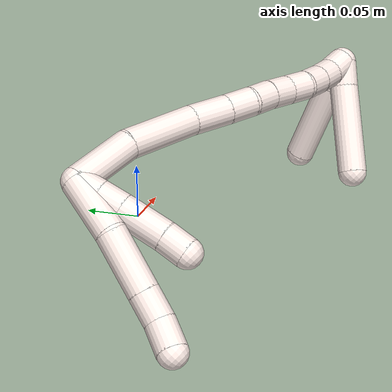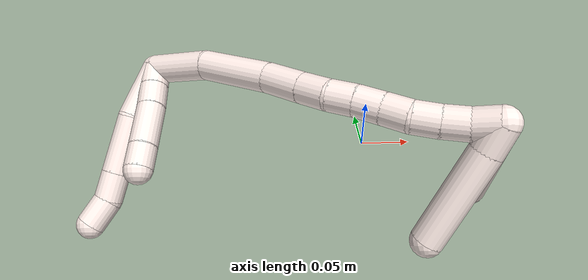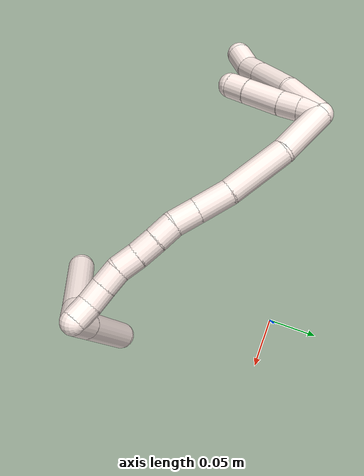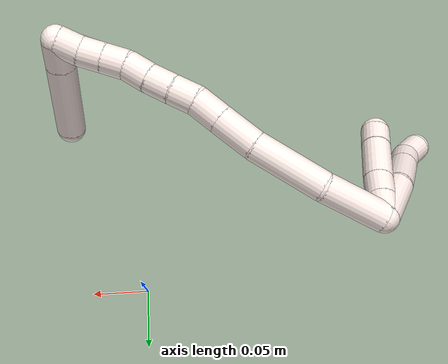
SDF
<sdf version="1.7">
 <world name="default">
  <model name="11">
   <static>0</static>
   <link name="11">
    <collision name="collision-cylinder-e_1_2_8">
     <pose>-0.003415 0.009228 0.022612 -0.387475 -0.138936 0.027301</pose>
     <geometry><cylinder><radius>0.0125</radius><length>0.04932</length></cylinder></geometry>
     <surface>
      <friction><ode><mu>1.16</mu><mu2>1.16</mu2><slip1>0</slip1><slip2>0</slip2></ode></friction>
      <contact><ode><kp>1e+06</kp><kd>1</kd><max_vel>0</max_vel><min_depth>0.001</min_depth></ode></contact>
     </surface>
    </collision>
    <visual name="visual-cylinder-e_1_2_8">
     <pose>-0.003415 0.009228 0.022612 -0.387475 -0.138936 0.027301</pose>
     <geometry><cylinder><radius>0.0125</radius><length>0.04932</length></cylinder></geometry>
     <material><ambient>1 0.933333 0.909804 1</ambient></material>
    </visual>
    <collision name="collision-cylinder-e_2_8_9">
     <pose>-0.013213 0.023264 0.069242 -0.197571 -0.254894 0.025398</pose>
     <geometry><cylinder><radius>0.0125</radius><length>0.050626</length></cylinder></geometry>
     <surface>
      <friction><ode><mu>1.16</mu><mu2>1.16</mu2><slip1>0</slip1><slip2>0</slip2></ode></friction>
      <contact><ode><kp>1e+06</kp><kd>1</kd><max_vel>0</max_vel><min_depth>0.001</min_depth></ode></contact>
     </surface>
    </collision>
    <visual name="visual-cylinder-e_2_8_9">
     <pose>-0.013213 0.023264 0.069242 -0.197571 -0.254894 0.025398</pose>
     <geometry><cylinder><radius>0.0125</radius><length>0.050626</length></cylinder></geometry>
     <material><ambient>1 0.933333 0.909804 1</ambient></material>
    </visual>
    <collision name="collision-cylinder-e_3_9_10">
     <pose>-0.022728 0.030398 0.104902 -0.197208 -0.257998 0.025663</pose>
     <geometry><cylinder><radius>0.0125</radius><length>0.024556</length></cylinder></geometry>
     <surface>
      <friction><ode><mu>1.16</mu><mu2>1.16</mu2><slip1>0</slip1><slip2>0</slip2></ode></friction>
      <contact><ode><kp>1e+06</kp><kd>1</kd><max_vel>0</max_vel><min_depth>0.001</min_depth></ode></contact>
     </surface>
    </collision>
    <visual name="visual-cylinder-e_3_9_10">
     <pose>-0.022728 0.030398 0.104902 -0.197208 -0.257998 0.025663</pose>
     <geometry><cylinder><radius>0.0125</radius><length>0.024556</length></cylinder></geometry>
     <material><ambient>1 0.933333 0.909804 1</ambient></material>
    </visual>
    <collision name="collision-cylinder-e_4_10_6">
     <pose>-0.029523 0.038985 0.127029 -0.538255 -0.291382 0.080898</pose>
     <geometry><cylinder><radius>0.0125</radius><length>0.025499</length></cylinder></geometry>
     <surface>
      <friction><ode><mu>1.16</mu><mu2>1.16</mu2><slip1>0</slip1><slip2>0</slip2></ode></friction>
      <contact><ode><kp>1e+06</kp><kd>1</kd><max_vel>0</max_vel><min_depth>0.001</min_depth></ode></contact>
     </surface>
    </collision>
    <visual name="visual-cylinder-e_4_10_6">
     <pose>-0.029523 0.038985 0.127029 -0.538255 -0.291382 0.080898</pose>
     <geometry><cylinder><radius>0.0125</radius><length>0.025499</length></cylinder></geometry>
     <material><ambient>1 0.933333 0.909804 1</ambient></material>
    </visual>
    <collision name="collision-cylinder-e_1_2_11">
     <pose>0.00262 0.001542 0.009626 -0.158813 0.262525 -0.02101</pose>
     <geometry><cylinder><radius>0.0125</radius><length>0.020188</length></cylinder></geometry>
     <surface>
      <friction><ode><mu>1.16</mu><mu2>1.16</mu2><slip1>0</slip1><slip2>0</slip2></ode></friction>
      <contact><ode><kp>1e+06</kp><kd>1</kd><max_vel>0</max_vel><min_depth>0.001</min_depth></ode></contact>
     </surface>
    </collision>
    <visual name="visual-cylinder-e_1_2_11">
     <pose>0.00262 0.001542 0.009626 -0.158813 0.262525 -0.02101</pose>
     <geometry><cylinder><radius>0.0125</radius><length>0.020188</length></cylinder></geometry>
     <material><ambient>1 0.933333 0.909804 1</ambient></material>
    </visual>
    <collision name="collision-cylinder-e_2_11_12">
     <pose>0.007857 0.004663 0.029212 -0.15731 0.253985 -0.020126</pose>
     <geometry><cylinder><radius>0.0125</radius><length>0.020839</length></cylinder></geometry>
     <surface>
      <friction><ode><mu>1.16</mu><mu2>1.16</mu2><slip1>0</slip1><slip2>0</slip2></ode></friction>
      <contact><ode><kp>1e+06</kp><kd>1</kd><max_vel>0</max_vel><min_depth>0.001</min_depth></ode></contact>
     </surface>
    </collision>
    <visual name="visual-cylinder-e_2_11_12">
     <pose>0.007857 0.004663 0.029212 -0.15731 0.253985 -0.020126</pose>
     <geometry><cylinder><radius>0.0125</radius><length>0.020839</length></cylinder></geometry>
     <material><ambient>1 0.933333 0.909804 1</ambient></material>
    </visual>
    <collision name="collision-cylinder-e_3_12_13">
     <pose>0.014838 0.01028 0.057502 -0.216748 0.228364 -0.024953</pose>
     <geometry><cylinder><radius>0.0125</radius><length>0.038538</length></cylinder></geometry>
     <surface>
      <friction><ode><mu>1.16</mu><mu2>1.16</mu2><slip1>0</slip1><slip2>0</slip2></ode></friction>
      <contact><ode><kp>1e+06</kp><kd>1</kd><max_vel>0</max_vel><min_depth>0.001</min_depth></ode></contact>
     </surface>
    </collision>
    <visual name="visual-cylinder-e_3_12_13">
     <pose>0.014838 0.01028 0.057502 -0.216748 0.228364 -0.024953</pose>
     <geometry><cylinder><radius>0.0125</radius><length>0.038538</length></cylinder></geometry>
     <material><ambient>1 0.933333 0.909804 1</ambient></material>
    </visual>
    <collision name="collision-cylinder-e_4_13_5">
     <pose>0.020831 0.016349 0.085711 -0.202974 0.16032 -0.016361</pose>
     <geometry><cylinder><radius>0.0125</radius><length>0.020434</length></cylinder></geometry>
     <surface>
      <friction><ode><mu>1.16</mu><mu2>1.16</mu2><slip1>0</slip1><slip2>0</slip2></ode></friction>
      <contact><ode><kp>1e+06</kp><kd>1</kd><max_vel>0</max_vel><min_depth>0.001</min_depth></ode></contact>
     </surface>
    </collision>
    <visual name="visual-cylinder-e_4_13_5">
     <pose>0.020831 0.016349 0.085711 -0.202974 0.16032 -0.016361</pose>
     <geometry><cylinder><radius>0.0125</radius><length>0.020434</length></cylinder></geometry>
     <material><ambient>1 0.933333 0.909804 1</ambient></material>
    </visual>
    <collision name="collision-cylinder-e_1_2_14">
     <pose>0.02224 -0.015914 0.002754 1.39941 0.9427 0.810557</pose>
     <geometry><cylinder><radius>0.0125</radius><length>0.054972</length></cylinder></geometry>
     <surface>
      <friction><ode><mu>1.16</mu><mu2>1.16</mu2><slip1>0</slip1><slip2>0</slip2></ode></friction>
      <contact><ode><kp>1e+06</kp><kd>1</kd><max_vel>0</max_vel><min_depth>0.001</min_depth></ode></contact>
     </surface>
    </collision>
    <visual name="visual-cylinder-e_1_2_14">
     <pose>0.02224 -0.015914 0.002754 1.39941 0.9427 0.810557</pose>
     <geometry><cylinder><radius>0.0125</radius><length>0.054972</length></cylinder></geometry>
     <material><ambient>1 0.933333 0.909804 1</ambient></material>
    </visual>
    <collision name="collision-cylinder-e_2_14_15">
     <pose>0.068344 -0.049828 0.015707 1.05532 0.856578 0.520088</pose>
     <geometry><cylinder><radius>0.0125</radius><length>0.063165</length></cylinder></geometry>
     <surface>
      <friction><ode><mu>1.16</mu><mu2>1.16</mu2><slip1>0</slip1><slip2>0</slip2></ode></friction>
      <contact><ode><kp>1e+06</kp><kd>1</kd><max_vel>0</max_vel><min_depth>0.001</min_depth></ode></contact>
     </surface>
    </collision>
    <visual name="visual-cylinder-e_2_14_15">
     <pose>0.068344 -0.049828 0.015707 1.05532 0.856578 0.520088</pose>
     <geometry><cylinder><radius>0.0125</radius><length>0.063165</length></cylinder></geometry>
     <material><ambient>1 0.933333 0.909804 1</ambient></material>
    </visual>
    <collision name="collision-cylinder-e_3_15_16">
     <pose>0.105511 -0.07601 0.032814 0.869565 0.892992 0.437558</pose>
     <geometry><cylinder><radius>0.0125</radius><length>0.034156</length></cylinder></geometry>
     <surface>
      <friction><ode><mu>1.16</mu><mu2>1.16</mu2><slip1>0</slip1><slip2>0</slip2></ode></friction>
      <contact><ode><kp>1e+06</kp><kd>1</kd><max_vel>0</max_vel><min_depth>0.001</min_depth></ode></contact>
     </surface>
    </collision>
    <visual name="visual-cylinder-e_3_15_16">
     <pose>0.105511 -0.07601 0.032814 0.869565 0.892992 0.437558</pose>
     <geometry><cylinder><radius>0.0125</radius><length>0.034156</length></cylinder></geometry>
     <material><ambient>1 0.933333 0.909804 1</ambient></material>
    </visual>
    <collision name="collision-cylinder-e_4_16_17">
     <pose>0.128465 -0.089824 0.044442 0.873299 0.920068 0.454497</pose>
     <geometry><cylinder><radius>0.0125</radius><length>0.024258</length></cylinder></geometry>
     <surface>
      <friction><ode><mu>1.16</mu><mu2>1.16</mu2><slip1>0</slip1><slip2>0</slip2></ode></friction>
      <contact><ode><kp>1e+06</kp><kd>1</kd><max_vel>0</max_vel><min_depth>0.001</min_depth></ode></contact>
     </surface>
    </collision>
    <visual name="visual-cylinder-e_4_16_17">
     <pose>0.128465 -0.089824 0.044442 0.873299 0.920068 0.454497</pose>
     <geometry><cylinder><radius>0.0125</radius><length>0.024258</length></cylinder></geometry>
     <material><ambient>1 0.933333 0.909804 1</ambient></material>
    </visual>
    <collision name="collision-cylinder-e_5_17_18">
     <pose>0.14542 -0.102287 0.052344 1.1349 0.769823 0.505389</pose>
     <geometry><cylinder><radius>0.0125</radius><length>0.020992</length></cylinder></geometry>
     <surface>
      <friction><ode><mu>1.16</mu><mu2>1.16</mu2><slip1>0</slip1><slip2>0</slip2></ode></friction>
      <contact><ode><kp>1e+06</kp><kd>1</kd><max_vel>0</max_vel><min_depth>0.001</min_depth></ode></contact>
     </surface>
    </collision>
    <visual name="visual-cylinder-e_5_17_18">
     <pose>0.14542 -0.102287 0.052344 1.1349 0.769823 0.505389</pose>
     <geometry><cylinder><radius>0.0125</radius><length>0.020992</length></cylinder></geometry>
     <material><ambient>1 0.933333 0.909804 1</ambient></material>
    </visual>
    <collision name="collision-cylinder-e_6_18_19">
     <pose>0.15983 -0.116063 0.059476 1.05357 0.726848 0.435379</pose>
     <geometry><cylinder><radius>0.0125</radius><length>0.021383</length></cylinder></geometry>
     <surface>
      <friction><ode><mu>1.16</mu><mu2>1.16</mu2><slip1>0</slip1><slip2>0</slip2></ode></friction>
      <contact><ode><kp>1e+06</kp><kd>1</kd><max_vel>0</max_vel><min_depth>0.001</min_depth></ode></contact>
     </surface>
    </collision>
    <visual name="visual-cylinder-e_6_18_19">
     <pose>0.15983 -0.116063 0.059476 1.05357 0.726848 0.435379</pose>
     <geometry><cylinder><radius>0.0125</radius><length>0.021383</length></cylinder></geometry>
     <material><ambient>1 0.933333 0.909804 1</ambient></material>
    </visual>
    <collision name="collision-cylinder-e_7_19_20">
     <pose>0.174421 -0.12906 0.067505 0.977888 0.798076 0.441366</pose>
     <geometry><cylinder><radius>0.0125</radius><length>0.020911</length></cylinder></geometry>
     <surface>
      <friction><ode><mu>1.16</mu><mu2>1.16</mu2><slip1>0</slip1><slip2>0</slip2></ode></friction>
      <contact><ode><kp>1e+06</kp><kd>1</kd><max_vel>0</max_vel><min_depth>0.001</min_depth></ode></contact>
     </surface>
    </collision>
    <visual name="visual-cylinder-e_7_19_20">
     <pose>0.174421 -0.12906 0.067505 0.977888 0.798076 0.441366</pose>
     <geometry><cylinder><radius>0.0125</radius><length>0.020911</length></cylinder></geometry>
     <material><ambient>1 0.933333 0.909804 1</ambient></material>
    </visual>
    <collision name="collision-cylinder-e_8_20_21">
     <pose>0.188173 -0.142648 0.073931 1.26881 0.67101 0.502347</pose>
     <geometry><cylinder><radius>0.0125</radius><length>0.020153</length></cylinder></geometry>
     <surface>
      <friction><ode><mu>1.16</mu><mu2>1.16</mu2><slip1>0</slip1><slip2>0</slip2></ode></friction>
      <contact><ode><kp>1e+06</kp><kd>1</kd><max_vel>0</max_vel><min_depth>0.001</min_depth></ode></contact>
     </surface>
    </collision>
    <visual name="visual-cylinder-e_8_20_21">
     <pose>0.188173 -0.142648 0.073931 1.26881 0.67101 0.502347</pose>
     <geometry><cylinder><radius>0.0125</radius><length>0.020153</length></cylinder></geometry>
     <material><ambient>1 0.933333 0.909804 1</ambient></material>
    </visual>
    <collision name="collision-cylinder-e_9_21_22">
     <pose>0.200948 -0.157585 0.077966 1.34655 0.708805 0.573969</pose>
     <geometry><cylinder><radius>0.0125</radius><length>0.020002</length></cylinder></geometry>
     <surface>
      <friction><ode><mu>1.16</mu><mu2>1.16</mu2><slip1>0</slip1><slip2>0</slip2></ode></friction>
      <contact><ode><kp>1e+06</kp><kd>1</kd><max_vel>0</max_vel><min_depth>0.001</min_depth></ode></contact>
     </surface>
    </collision>
    <visual name="visual-cylinder-e_9_21_22">
     <pose>0.200948 -0.157585 0.077966 1.34655 0.708805 0.573969</pose>
     <geometry><cylinder><radius>0.0125</radius><length>0.020002</length></cylinder></geometry>
     <material><ambient>1 0.933333 0.909804 1</ambient></material>
    </visual>
    <collision name="collision-cylinder-e_10_22_1">
     <pose>0.215383 -0.171058 0.080297 1.46528 0.914344 0.833339</pose>
     <geometry><cylinder><radius>0.0125</radius><length>0.020008</length></cylinder></geometry>
     <surface>
      <friction><ode><mu>1.16</mu><mu2>1.16</mu2><slip1>0</slip1><slip2>0</slip2></ode></friction>
      <contact><ode><kp>1e+06</kp><kd>1</kd><max_vel>0</max_vel><min_depth>0.001</min_depth></ode></contact>
     </surface>
    </collision>
    <visual name="visual-cylinder-e_10_22_1">
     <pose>0.215383 -0.171058 0.080297 1.46528 0.914344 0.833339</pose>
     <geometry><cylinder><radius>0.0125</radius><length>0.020008</length></cylinder></geometry>
     <material><ambient>1 0.933333 0.909804 1</ambient></material>
    </visual>
    <collision name="collision-cylinder-e_1_1_23">
     <pose>0.212714 -0.183138 0.085247 0.948848 -0.961553 -0.523439</pose>
     <geometry><cylinder><radius>0.0125</radius><length>0.025836</length></cylinder></geometry>
     <surface>
      <friction><ode><mu>1.16</mu><mu2>1.16</mu2><slip1>0</slip1><slip2>0</slip2></ode></friction>
      <contact><ode><kp>1e+06</kp><kd>1</kd><max_vel>0</max_vel><min_depth>0.001</min_depth></ode></contact>
     </surface>
    </collision>
    <visual name="visual-cylinder-e_1_1_23">
     <pose>0.212714 -0.183138 0.085247 0.948848 -0.961553 -0.523439</pose>
     <geometry><cylinder><radius>0.0125</radius><length>0.025836</length></cylinder></geometry>
     <material><ambient>1 0.933333 0.909804 1</ambient></material>
    </visual>
    <collision name="collision-cylinder-e_2_23_4">
     <pose>0.171922 -0.206651 0.102074 0.949934 -0.951628 -0.518062</pose>
     <geometry><cylinder><radius>0.0125</radius><length>0.074164</length></cylinder></geometry>
     <surface>
      <friction><ode><mu>1.16</mu><mu2>1.16</mu2><slip1>0</slip1><slip2>0</slip2></ode></friction>
      <contact><ode><kp>1e+06</kp><kd>1</kd><max_vel>0</max_vel><min_depth>0.001</min_depth></ode></contact>
     </surface>
    </collision>
    <visual name="visual-cylinder-e_2_23_4">
     <pose>0.171922 -0.206651 0.102074 0.949934 -0.951628 -0.518062</pose>
     <geometry><cylinder><radius>0.0125</radius><length>0.074164</length></cylinder></geometry>
     <material><ambient>1 0.933333 0.909804 1</ambient></material>
    </visual>
    <collision name="collision-cylinder-e_1_1_24">
     <pose>0.215908 -0.176049 0.08953 -0.125167 -0.707258 0.046257</pose>
     <geometry><cylinder><radius>0.0125</radius><length>0.022778</length></cylinder></geometry>
     <surface>
      <friction><ode><mu>1.16</mu><mu2>1.16</mu2><slip1>0</slip1><slip2>0</slip2></ode></friction>
      <contact><ode><kp>1e+06</kp><kd>1</kd><max_vel>0</max_vel><min_depth>0.001</min_depth></ode></contact>
     </surface>
    </collision>
    <visual name="visual-cylinder-e_1_1_24">
     <pose>0.215908 -0.176049 0.08953 -0.125167 -0.707258 0.046257</pose>
     <geometry><cylinder><radius>0.0125</radius><length>0.022778</length></cylinder></geometry>
     <material><ambient>1 0.933333 0.909804 1</ambient></material>
    </visual>
    <collision name="collision-cylinder-e_2_24_3">
     <pose>0.184111 -0.167826 0.127181 -0.240999 -0.683944 0.08615</pose>
     <geometry><cylinder><radius>0.0125</radius><length>0.077222</length></cylinder></geometry>
     <surface>
      <friction><ode><mu>1.16</mu><mu2>1.16</mu2><slip1>0</slip1><slip2>0</slip2></ode></friction>
      <contact><ode><kp>1e+06</kp><kd>1</kd><max_vel>0</max_vel><min_depth>0.001</min_depth></ode></contact>
     </surface>
    </collision>
    <visual name="visual-cylinder-e_2_24_3">
     <pose>0.184111 -0.167826 0.127181 -0.240999 -0.683944 0.08615</pose>
     <geometry><cylinder><radius>0.0125</radius><length>0.077222</length></cylinder></geometry>
     <material><ambient>1 0.933333 0.909804 1</ambient></material>
    </visual>
    <collision name="collision-sphere-3">
     <pose>0.159714 -0.160683 0.156244 0 -0 0</pose>
     <geometry><sphere><radius>0.0125</radius></sphere></geometry>
     <surface>
      <friction><ode><mu>1.16</mu><mu2>1.16</mu2><slip1>0</slip1><slip2>0</slip2></ode></friction>
      <contact><ode><kp>1e+06</kp><kd>1</kd><max_vel>0</max_vel><min_depth>0.001</min_depth></ode></contact>
     </surface>
    </collision>
    <visual name="visual-sphere-3">
     <pose>0.159714 -0.160683 0.156244 0 -0 0</pose>
     <geometry><sphere><radius>0.0125</radius></sphere></geometry>
     <material><ambient>1 0.933333 0.909804 1</ambient></material>
    </visual>
    <collision name="collision-sphere-24">
     <pose>0.208508 -0.174968 0.098119 0 -0 0</pose>
     <geometry><sphere><radius>0.0125</radius></sphere></geometry>
     <surface>
      <friction><ode><mu>1.16</mu><mu2>1.16</mu2><slip1>0</slip1><slip2>0</slip2></ode></friction>
      <contact><ode><kp>1e+06</kp><kd>1</kd><max_vel>0</max_vel><min_depth>0.001</min_depth></ode></contact>
     </surface>
    </collision>
    <visual name="visual-sphere-24">
     <pose>0.208508 -0.174968 0.098119 0 -0 0</pose>
     <geometry><sphere><radius>0.0125</radius></sphere></geometry>
     <material><ambient>1 0.933333 0.909804 1</ambient></material>
    </visual>
    <collision name="collision-sphere-4">
     <pose>0.141724 -0.224155 0.114593 0 -0 0</pose>
     <geometry><sphere><radius>0.0125</radius></sphere></geometry>
     <surface>
      <friction><ode><mu>1.16</mu><mu2>1.16</mu2><slip1>0</slip1><slip2>0</slip2></ode></friction>
      <contact><ode><kp>1e+06</kp><kd>1</kd><max_vel>0</max_vel><min_depth>0.001</min_depth></ode></contact>
     </surface>
    </collision>
    <visual name="visual-sphere-4">
     <pose>0.141724 -0.224155 0.114593 0 -0 0</pose>
     <geometry><sphere><radius>0.0125</radius></sphere></geometry>
     <material><ambient>1 0.933333 0.909804 1</ambient></material>
    </visual>
    <collision name="collision-sphere-23">
     <pose>0.20212 -0.189146 0.089554 0 -0 0</pose>
     <geometry><sphere><radius>0.0125</radius></sphere></geometry>
     <surface>
      <friction><ode><mu>1.16</mu><mu2>1.16</mu2><slip1>0</slip1><slip2>0</slip2></ode></friction>
      <contact><ode><kp>1e+06</kp><kd>1</kd><max_vel>0</max_vel><min_depth>0.001</min_depth></ode></contact>
     </surface>
    </collision>
    <visual name="visual-sphere-23">
     <pose>0.20212 -0.189146 0.089554 0 -0 0</pose>
     <geometry><sphere><radius>0.0125</radius></sphere></geometry>
     <material><ambient>1 0.933333 0.909804 1</ambient></material>
    </visual>
    <collision name="collision-sphere-1">
     <pose>0.223308 -0.17713 0.08094 0 -0 0</pose>
     <geometry><sphere><radius>0.0125</radius></sphere></geometry>
     <surface>
      <friction><ode><mu>1.16</mu><mu2>1.16</mu2><slip1>0</slip1><slip2>0</slip2></ode></friction>
      <contact><ode><kp>1e+06</kp><kd>1</kd><max_vel>0</max_vel><min_depth>0.001</min_depth></ode></contact>
     </surface>
    </collision>
    <visual name="visual-sphere-1">
     <pose>0.223308 -0.17713 0.08094 0 -0 0</pose>
     <geometry><sphere><radius>0.0125</radius></sphere></geometry>
     <material><ambient>1 0.933333 0.909804 1</ambient></material>
    </visual>
    <collision name="collision-sphere-22">
     <pose>0.207458 -0.164987 0.079654 0 -0 0</pose>
     <geometry><sphere><radius>0.0125</radius></sphere></geometry>
     <surface>
      <friction><ode><mu>1.16</mu><mu2>1.16</mu2><slip1>0</slip1><slip2>0</slip2></ode></friction>
      <contact><ode><kp>1e+06</kp><kd>1</kd><max_vel>0</max_vel><min_depth>0.001</min_depth></ode></contact>
     </surface>
    </collision>
    <visual name="visual-sphere-22">
     <pose>0.207458 -0.164987 0.079654 0 -0 0</pose>
     <geometry><sphere><radius>0.0125</radius></sphere></geometry>
     <material><ambient>1 0.933333 0.909804 1</ambient></material>
    </visual>
    <collision name="collision-sphere-21">
     <pose>0.194438 -0.150183 0.076278 0 -0 0</pose>
     <geometry><sphere><radius>0.0125</radius></sphere></geometry>
     <surface>
      <friction><ode><mu>1.16</mu><mu2>1.16</mu2><slip1>0</slip1><slip2>0</slip2></ode></friction>
      <contact><ode><kp>1e+06</kp><kd>1</kd><max_vel>0</max_vel><min_depth>0.001</min_depth></ode></contact>
     </surface>
    </collision>
    <visual name="visual-sphere-21">
     <pose>0.194438 -0.150183 0.076278 0 -0 0</pose>
     <geometry><sphere><radius>0.0125</radius></sphere></geometry>
     <material><ambient>1 0.933333 0.909804 1</ambient></material>
    </visual>
    <collision name="collision-sphere-11">
     <pose>0.005239 0.003083 0.019251 0 -0 0</pose>
     <geometry><sphere><radius>0.0125</radius></sphere></geometry>
     <surface>
      <friction><ode><mu>1.16</mu><mu2>1.16</mu2><slip1>0</slip1><slip2>0</slip2></ode></friction>
      <contact><ode><kp>1e+06</kp><kd>1</kd><max_vel>0</max_vel><min_depth>0.001</min_depth></ode></contact>
     </surface>
    </collision>
    <visual name="visual-sphere-11">
     <pose>0.005239 0.003083 0.019251 0 -0 0</pose>
     <geometry><sphere><radius>0.0125</radius></sphere></geometry>
     <material><ambient>1 0.933333 0.909804 1</ambient></material>
    </visual>
    <collision name="collision-sphere-6">
     <pose>-0.033186 0.045245 0.137514 0 -0 0</pose>
     <geometry><sphere><radius>0.0125</radius></sphere></geometry>
     <surface>
      <friction><ode><mu>1.16</mu><mu2>1.16</mu2><slip1>0</slip1><slip2>0</slip2></ode></friction>
      <contact><ode><kp>1e+06</kp><kd>1</kd><max_vel>0</max_vel><min_depth>0.001</min_depth></ode></contact>
     </surface>
    </collision>
    <visual name="visual-sphere-6">
     <pose>-0.033186 0.045245 0.137514 0 -0 0</pose>
     <geometry><sphere><radius>0.0125</radius></sphere></geometry>
     <material><ambient>1 0.933333 0.909804 1</ambient></material>
    </visual>
    <collision name="collision-sphere-10">
     <pose>-0.02586 0.032724 0.116543 0 -0 0</pose>
     <geometry><sphere><radius>0.0125</radius></sphere></geometry>
     <surface>
      <friction><ode><mu>1.16</mu><mu2>1.16</mu2><slip1>0</slip1><slip2>0</slip2></ode></friction>
      <contact><ode><kp>1e+06</kp><kd>1</kd><max_vel>0</max_vel><min_depth>0.001</min_depth></ode></contact>
     </surface>
    </collision>
    <visual name="visual-sphere-10">
     <pose>-0.02586 0.032724 0.116543 0 -0 0</pose>
     <geometry><sphere><radius>0.0125</radius></sphere></geometry>
     <material><ambient>1 0.933333 0.909804 1</ambient></material>
    </visual>
    <collision name="collision-sphere-9">
     <pose>-0.019595 0.028072 0.09326 0 -0 0</pose>
     <geometry><sphere><radius>0.0125</radius></sphere></geometry>
     <surface>
      <friction><ode><mu>1.16</mu><mu2>1.16</mu2><slip1>0</slip1><slip2>0</slip2></ode></friction>
      <contact><ode><kp>1e+06</kp><kd>1</kd><max_vel>0</max_vel><min_depth>0.001</min_depth></ode></contact>
     </surface>
    </collision>
    <visual name="visual-sphere-9">
     <pose>-0.019595 0.028072 0.09326 0 -0 0</pose>
     <geometry><sphere><radius>0.0125</radius></sphere></geometry>
     <material><ambient>1 0.933333 0.909804 1</ambient></material>
    </visual>
    <collision name="collision-sphere-2">
     <geometry><sphere><radius>0.0125</radius></sphere></geometry>
     <surface>
      <friction><ode><mu>1.16</mu><mu2>1.16</mu2><slip1>0</slip1><slip2>0</slip2></ode></friction>
      <contact><ode><kp>1e+06</kp><kd>1</kd><max_vel>0</max_vel><min_depth>0.001</min_depth></ode></contact>
     </surface>
    </collision>
    <visual name="visual-sphere-2">
     <geometry><sphere><radius>0.0125</radius></sphere></geometry>
     <material><ambient>1 0.933333 0.909804 1</ambient></material>
    </visual>
    <collision name="collision-sphere-19">
     <pose>0.166935 -0.123007 0.063427 0 -0 0</pose>
     <geometry><sphere><radius>0.0125</radius></sphere></geometry>
     <surface>
      <friction><ode><mu>1.16</mu><mu2>1.16</mu2><slip1>0</slip1><slip2>0</slip2></ode></friction>
      <contact><ode><kp>1e+06</kp><kd>1</kd><max_vel>0</max_vel><min_depth>0.001</min_depth></ode></contact>
     </surface>
    </collision>
    <visual name="visual-sphere-19">
     <pose>0.166935 -0.123007 0.063427 0 -0 0</pose>
     <geometry><sphere><radius>0.0125</radius></sphere></geometry>
     <material><ambient>1 0.933333 0.909804 1</ambient></material>
    </visual>
    <collision name="collision-sphere-8">
     <pose>-0.00683 0.018456 0.045224 0 -0 0</pose>
     <geometry><sphere><radius>0.0125</radius></sphere></geometry>
     <surface>
      <friction><ode><mu>1.16</mu><mu2>1.16</mu2><slip1>0</slip1><slip2>0</slip2></ode></friction>
      <contact><ode><kp>1e+06</kp><kd>1</kd><max_vel>0</max_vel><min_depth>0.001</min_depth></ode></contact>
     </surface>
    </collision>
    <visual name="visual-sphere-8">
     <pose>-0.00683 0.018456 0.045224 0 -0 0</pose>
     <geometry><sphere><radius>0.0125</radius></sphere></geometry>
     <material><ambient>1 0.933333 0.909804 1</ambient></material>
    </visual>
    <collision name="collision-sphere-12">
     <pose>0.010475 0.006243 0.039173 0 -0 0</pose>
     <geometry><sphere><radius>0.0125</radius></sphere></geometry>
     <surface>
      <friction><ode><mu>1.16</mu><mu2>1.16</mu2><slip1>0</slip1><slip2>0</slip2></ode></friction>
      <contact><ode><kp>1e+06</kp><kd>1</kd><max_vel>0</max_vel><min_depth>0.001</min_depth></ode></contact>
     </surface>
    </collision>
    <visual name="visual-sphere-12">
     <pose>0.010475 0.006243 0.039173 0 -0 0</pose>
     <geometry><sphere><radius>0.0125</radius></sphere></geometry>
     <material><ambient>1 0.933333 0.909804 1</ambient></material>
    </visual>
    <collision name="collision-sphere-13">
     <pose>0.0192 0.014316 0.075832 0 -0 0</pose>
     <geometry><sphere><radius>0.0125</radius></sphere></geometry>
     <surface>
      <friction><ode><mu>1.16</mu><mu2>1.16</mu2><slip1>0</slip1><slip2>0</slip2></ode></friction>
      <contact><ode><kp>1e+06</kp><kd>1</kd><max_vel>0</max_vel><min_depth>0.001</min_depth></ode></contact>
     </surface>
    </collision>
    <visual name="visual-sphere-13">
     <pose>0.0192 0.014316 0.075832 0 -0 0</pose>
     <geometry><sphere><radius>0.0125</radius></sphere></geometry>
     <material><ambient>1 0.933333 0.909804 1</ambient></material>
    </visual>
    <collision name="collision-sphere-5">
     <pose>0.022462 0.018382 0.09559 0 -0 0</pose>
     <geometry><sphere><radius>0.0125</radius></sphere></geometry>
     <surface>
      <friction><ode><mu>1.16</mu><mu2>1.16</mu2><slip1>0</slip1><slip2>0</slip2></ode></friction>
      <contact><ode><kp>1e+06</kp><kd>1</kd><max_vel>0</max_vel><min_depth>0.001</min_depth></ode></contact>
     </surface>
    </collision>
    <visual name="visual-sphere-5">
     <pose>0.022462 0.018382 0.09559 0 -0 0</pose>
     <geometry><sphere><radius>0.0125</radius></sphere></geometry>
     <material><ambient>1 0.933333 0.909804 1</ambient></material>
    </visual>
    <collision name="collision-sphere-14">
     <pose>0.044481 -0.031829 0.005509 0 -0 0</pose>
     <geometry><sphere><radius>0.0125</radius></sphere></geometry>
     <surface>
      <friction><ode><mu>1.16</mu><mu2>1.16</mu2><slip1>0</slip1><slip2>0</slip2></ode></friction>
      <contact><ode><kp>1e+06</kp><kd>1</kd><max_vel>0</max_vel><min_depth>0.001</min_depth></ode></contact>
     </surface>
    </collision>
    <visual name="visual-sphere-14">
     <pose>0.044481 -0.031829 0.005509 0 -0 0</pose>
     <geometry><sphere><radius>0.0125</radius></sphere></geometry>
     <material><ambient>1 0.933333 0.909804 1</ambient></material>
    </visual>
    <collision name="collision-sphere-15">
     <pose>0.092208 -0.067827 0.025905 0 -0 0</pose>
     <geometry><sphere><radius>0.0125</radius></sphere></geometry>
     <surface>
      <friction><ode><mu>1.16</mu><mu2>1.16</mu2><slip1>0</slip1><slip2>0</slip2></ode></friction>
      <contact><ode><kp>1e+06</kp><kd>1</kd><max_vel>0</max_vel><min_depth>0.001</min_depth></ode></contact>
     </surface>
    </collision>
    <visual name="visual-sphere-15">
     <pose>0.092208 -0.067827 0.025905 0 -0 0</pose>
     <geometry><sphere><radius>0.0125</radius></sphere></geometry>
     <material><ambient>1 0.933333 0.909804 1</ambient></material>
    </visual>
    <collision name="collision-sphere-16">
     <pose>0.118815 -0.084192 0.039723 0 -0 0</pose>
     <geometry><sphere><radius>0.0125</radius></sphere></geometry>
     <surface>
      <friction><ode><mu>1.16</mu><mu2>1.16</mu2><slip1>0</slip1><slip2>0</slip2></ode></friction>
      <contact><ode><kp>1e+06</kp><kd>1</kd><max_vel>0</max_vel><min_depth>0.001</min_depth></ode></contact>
     </surface>
    </collision>
    <visual name="visual-sphere-16">
     <pose>0.118815 -0.084192 0.039723 0 -0 0</pose>
     <geometry><sphere><radius>0.0125</radius></sphere></geometry>
     <material><ambient>1 0.933333 0.909804 1</ambient></material>
    </visual>
    <collision name="collision-sphere-17">
     <pose>0.138115 -0.095455 0.049162 0 -0 0</pose>
     <geometry><sphere><radius>0.0125</radius></sphere></geometry>
     <surface>
      <friction><ode><mu>1.16</mu><mu2>1.16</mu2><slip1>0</slip1><slip2>0</slip2></ode></friction>
      <contact><ode><kp>1e+06</kp><kd>1</kd><max_vel>0</max_vel><min_depth>0.001</min_depth></ode></contact>
     </surface>
    </collision>
    <visual name="visual-sphere-17">
     <pose>0.138115 -0.095455 0.049162 0 -0 0</pose>
     <geometry><sphere><radius>0.0125</radius></sphere></geometry>
     <material><ambient>1 0.933333 0.909804 1</ambient></material>
    </visual>
    <collision name="collision-sphere-18">
     <pose>0.152726 -0.109118 0.055526 0 -0 0</pose>
     <geometry><sphere><radius>0.0125</radius></sphere></geometry>
     <surface>
      <friction><ode><mu>1.16</mu><mu2>1.16</mu2><slip1>0</slip1><slip2>0</slip2></ode></friction>
      <contact><ode><kp>1e+06</kp><kd>1</kd><max_vel>0</max_vel><min_depth>0.001</min_depth></ode></contact>
     </surface>
    </collision>
    <visual name="visual-sphere-18">
     <pose>0.152726 -0.109118 0.055526 0 -0 0</pose>
     <geometry><sphere><radius>0.0125</radius></sphere></geometry>
     <material><ambient>1 0.933333 0.909804 1</ambient></material>
    </visual>
    <collision name="collision-sphere-20">
     <pose>0.181907 -0.135113 0.071583 0 -0 0</pose>
     <geometry><sphere><radius>0.0125</radius></sphere></geometry>
     <surface>
      <friction><ode><mu>1.16</mu><mu2>1.16</mu2><slip1>0</slip1><slip2>0</slip2></ode></friction>
      <contact><ode><kp>1e+06</kp><kd>1</kd><max_vel>0</max_vel><min_depth>0.001</min_depth></ode></contact>
     </surface>
    </collision>
    <visual name="visual-sphere-20">
     <pose>0.181907 -0.135113 0.071583 0 -0 0</pose>
     <geometry><sphere><radius>0.0125</radius></sphere></geometry>
     <material><ambient>1 0.933333 0.909804 1</ambient></material>
    </visual>
    <inertial>
     <pose>0.094594 -0.077827 0.064827 0 -0 0</pose>
     <mass>0.75</mass>
     <inertia>
      <ixx>0.000139</ixx>
      <ixy>0</ixy>
      <ixz>0</ixz>
      <iyy>0.000155</iyy>
      <iyz>0</iyz>
      <izz>8.6e-05</izz>
     </inertia>
    </inertial>
   </link>
   <pose>-0.201313 -0.029281 0.111966 2.69678 -0.732646 -0.973831</pose>
  </model>
 </world>
</sdf>
